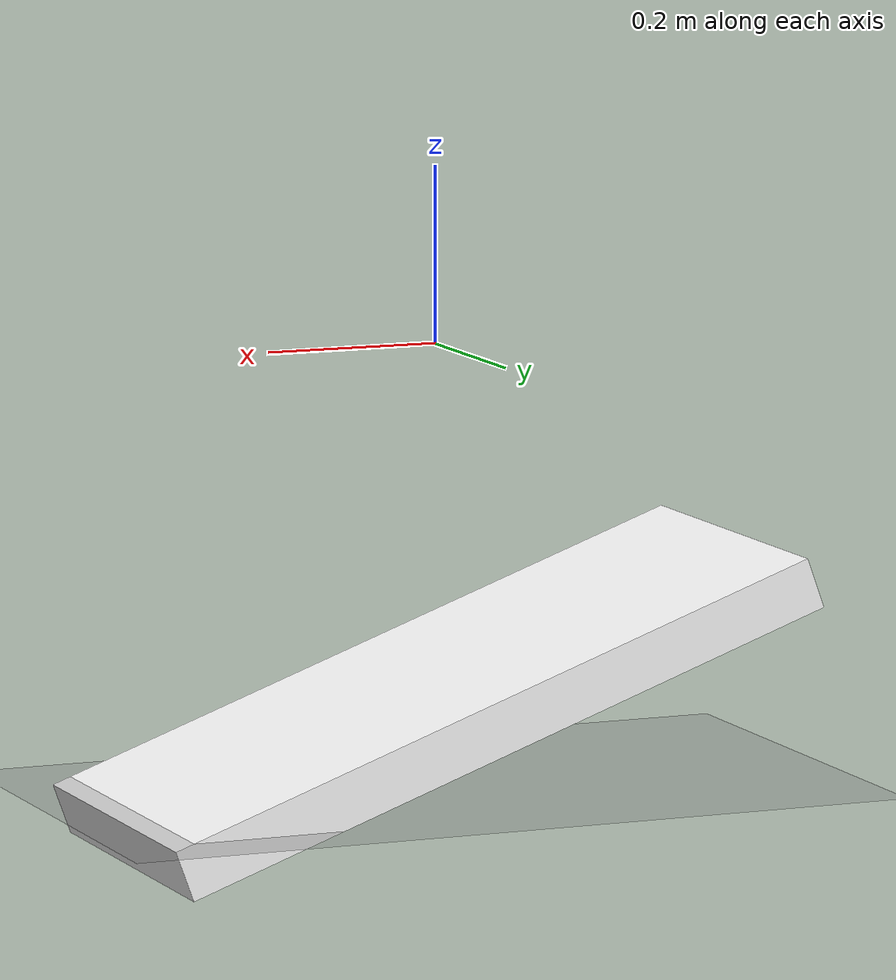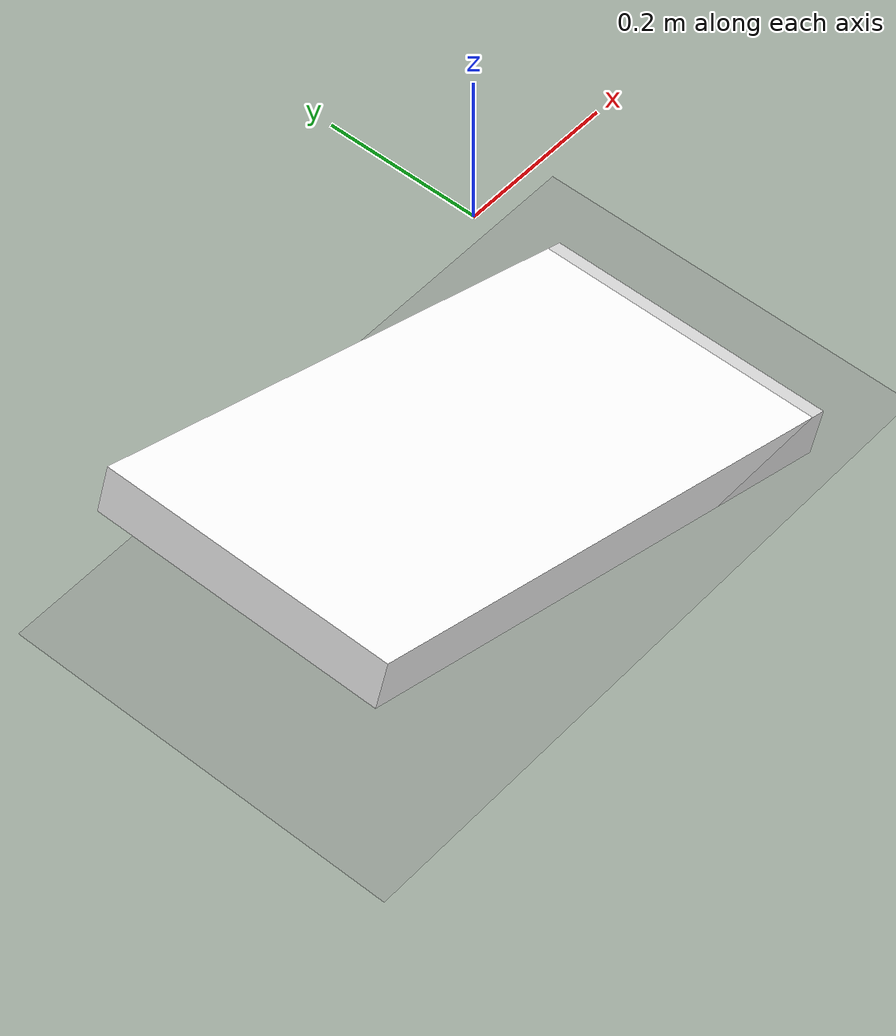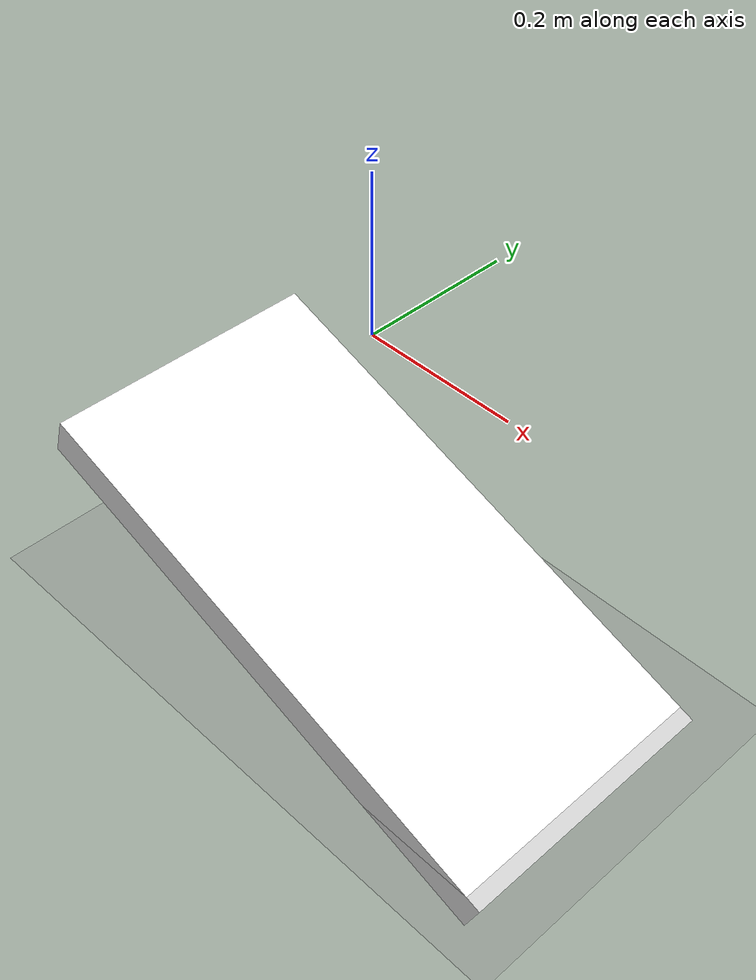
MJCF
<mujoco>
  <option density="1.204" viscosity="1.8e-5" integrator="implicit"/>

  <visual>
    <global elevation="-10"/>
  </visual>

  <asset>
    <texture name="grid" type="2d" builtin="checker" width="512" height="512" rgb2="0 0 0" rgb1="1 1 1"/>
    <material name="grid" texture="grid" texrepeat="2 2" texuniform="true" reflectance=".6"/>
  </asset>

  <worldbody>
    <geom name="ground" type="plane" size="5 5 .05" pos="0 0 -.5" material="grid"/>
    <geom name="ramp" type="box" size=".4 .2 .03" pos="0 0 -.4" euler="0 20 0" rgba="1 1 1 1"/>

  </worldbody>
</mujoco>
